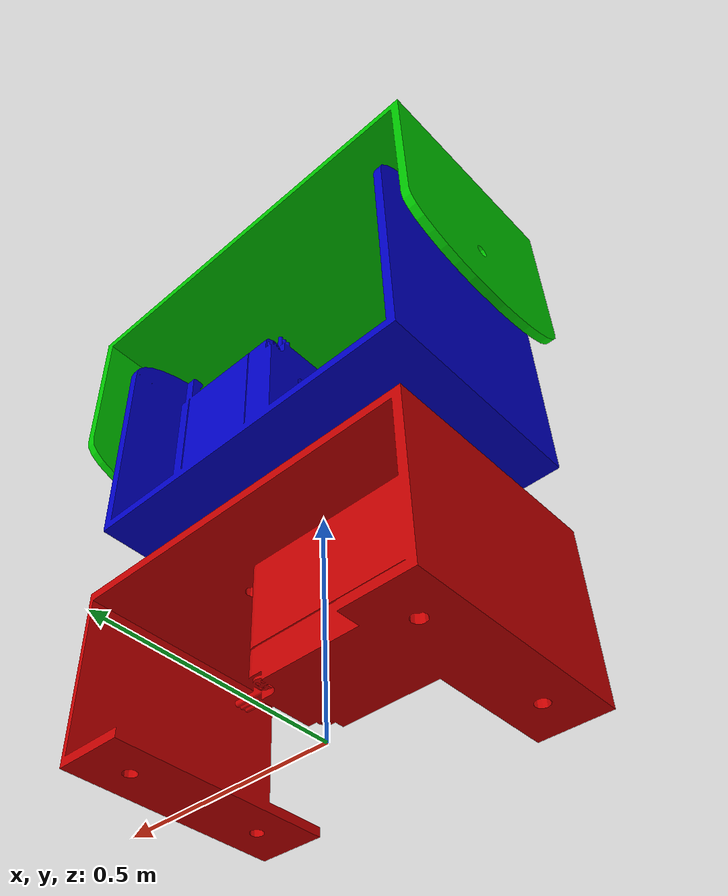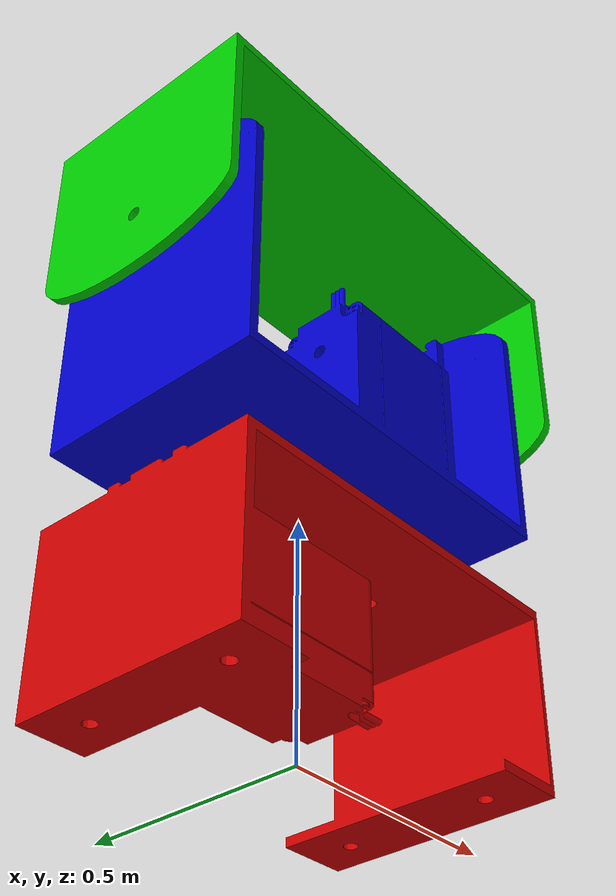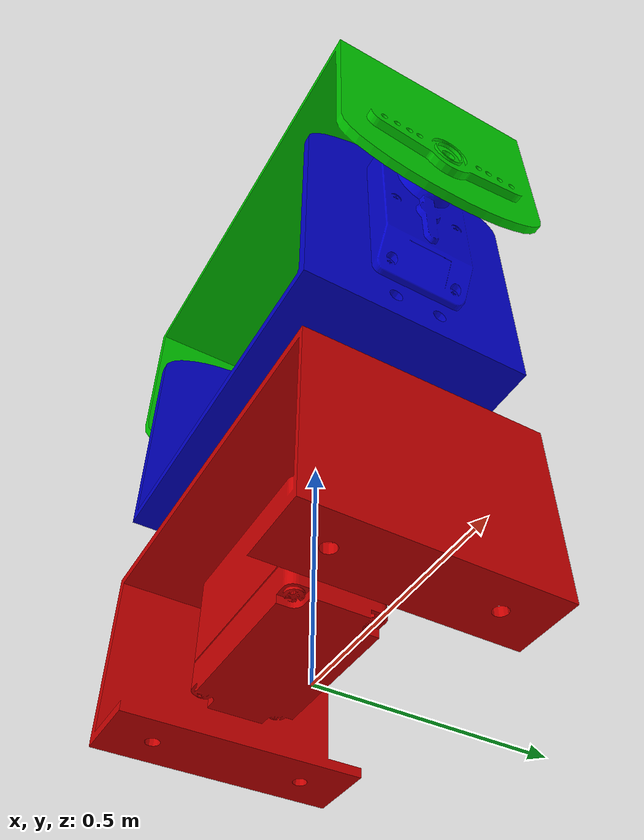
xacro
<?xml version="1.0"?>
<robot name="myrobot" xmlns:xacro="http://ros.org/wiki/xacro">

  <xacro:property name="base_x" value=".8" />
  <xacro:property name="base_y" value=".5" />
  <xacro:property name="base_z" value=".55" />
  <xacro:property name="pan_x" value=".9" />
  <xacro:property name="pan_y" value=".5" />
  <xacro:property name="pan_z" value=".6" />
  <xacro:property name="tilt_x" value="1" />
  <xacro:property name="tilt_y" value=".5" />
  <xacro:property name="tilt_z" value=".6" />
  <xacro:property name="base_inertia">
    <inertia ixx="1.0" ixy="0.0" ixz="0.0" iyy="1.0" iyz="0.0" izz="1.0" />
  </xacro:property>

  <material name="blue">
    <color rgba="0 0 .8 1"/>
  </material>

  <material name="red">
    <color rgba=".8 0 0 1"/>
  </material>

  <material name="green">
    <color rgba="0 .8 0 1"/>
  </material>

 <xacro:macro name="default_inertial" params="mass">
    <inertial>
      <mass value="${mass}" />
      <origin xyz="0 0 0"/>
      <xacro:insert_block name="base_inertia"/>
    </inertial>
 </xacro:macro>

  <link name="base_link">
    <visual>
      <origin xyz="0 0 0" rpy="0 0 0" />
      <geometry>
        <mesh filename="package://robot_description/urdf/meshes/base_link.stl" scale="0.01 0.01 0.01" />
      </geometry>
      <material name="red"/>
    </visual>

    <collision>
      <origin xyz="0 0 ${base_z/2}" rpy="0 0 0" />
      <geometry>
        <box size="${base_x} ${base_y} ${base_z}"/>
      </geometry>
    </collision>
    <xacro:default_inertial mass="10"/>
  </link>

  <joint name="joint_pan" type="revolute">
    <parent link="base_link"/>
    <child link="pan_link"/>
    <origin xyz="0 0 0.6" rpy="0 0 0"/>
    <axis xyz="0 0 1"/>
    <limit lower="-1.57" upper="1.57" effort="10" velocity="0.5" />
    <dynamics damping="0.7"/>
  </joint>

  <link name="pan_link">
    <visual>
      <origin xyz="0 0 -0.05" rpy="0 0 0" />
      <geometry>
        <mesh filename="package://robot_description/urdf/meshes/pan_link.stl" scale="0.01 0.01 0.01" />
      </geometry>
      <material name="blue"/>
    </visual>

    <collision>
      <origin xyz="0 0 ${pan_y/2}" rpy="0 0 0" />
      <geometry>
        <box size="${pan_x} ${pan_y} ${pan_z}"/>
      </geometry>
    </collision>
    <xacro:default_inertial mass="10"/>
  </link>

  <joint name="joint_tilt" type="revolute">
    <parent link="pan_link"/>
    <child link="tilt_link"/>
    <origin xyz="0 0 0.36" rpy="0 0 0"/>
    <axis xyz="1 0 0"/>
    <limit lower="-1.57" upper="1.57" effort="10" velocity="0.5" />
    <dynamics damping="0.7"/>
  </joint>

  <link name="tilt_link">
    <visual>
      <origin xyz="0.05 0 0" rpy="0 0 0" />
      <geometry>
        <mesh filename="package://robot_description/urdf/meshes/tilt_link.stl" scale="0.01 0.01 0.01" />
      </geometry>
      <material name="green"/>
    </visual>

    <collision>
      <origin xyz="0 0 ${tilt_y/2}" rpy="0 0 0" />
      <geometry>
        <box size="${tilt_x} ${tilt_y} ${tilt_z}"/>
      </geometry>
    </collision>
    <xacro:default_inertial mass="10"/>
  </link>

</robot>
